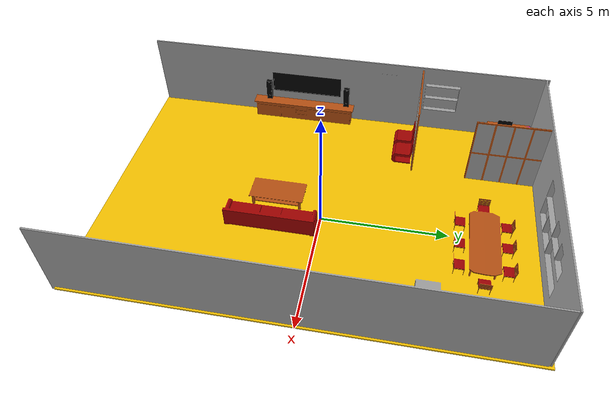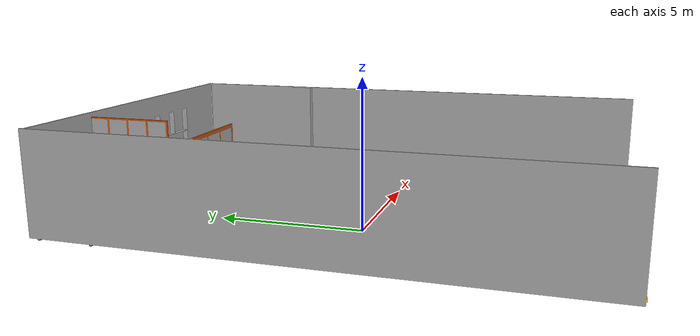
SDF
<?xml version='1.0'?>
<sdf version="1.4">
<model name="room">
  <pose>0 0 0 0 0 0</pose>
  <static>true</static>
    <link name="room">
    	<pose>0 0 0.749745 0 0 0</pose>
      <collision name="collision">
            <geometry>
              <mesh>
            	<uri>model://room/meshes/room.dae</uri>
              </mesh>
          </geometry>
     </collision>
      <visual name="visual">
        <geometry>
          <mesh>
            <uri>model://room/meshes/room.dae</uri>
        </mesh>
      </geometry>
    </visual>
  </link>
</model>
</sdf>
